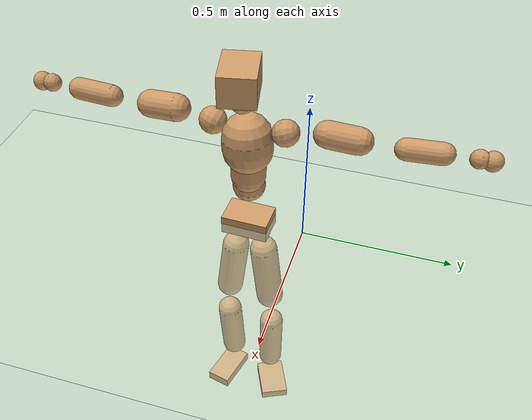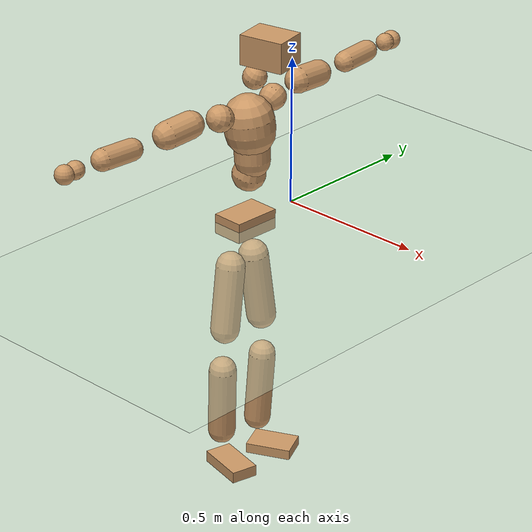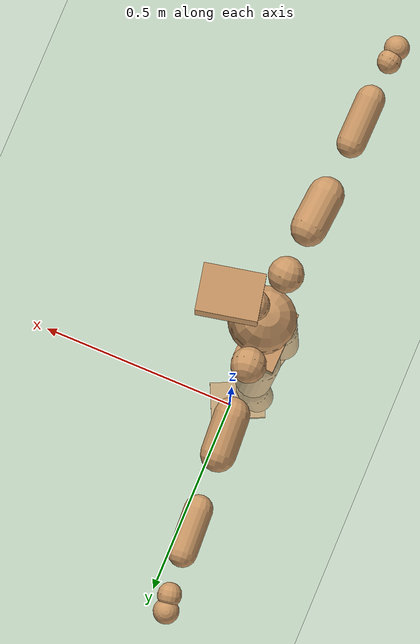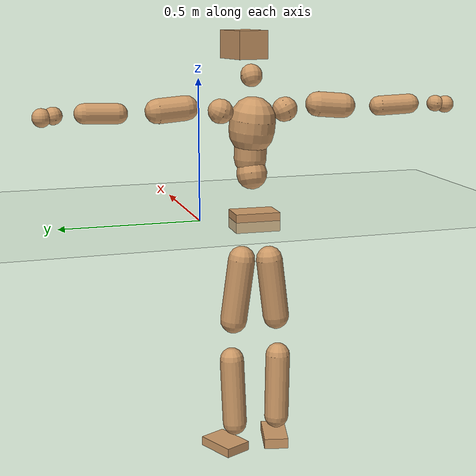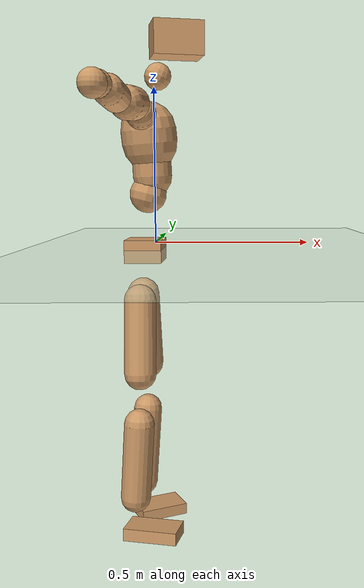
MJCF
<mujoco model="humanoid">
  <compiler coordinate="local" angle="radian"/>
  <default>
    <joint damping="0.0" armature="0.01" stiffness="0.0" limited="true"/>
    <geom conaffinity="1" condim="3" contype="7" margin="0.001" rgba="0.8 0.6 .4 1"/>
  </default>
  <asset>
    <texture type="skybox" builtin="gradient" rgb1=".4 .5 .6" rgb2="0 0 0" width="100" height="100"/>
    <texture builtin="flat" height="1278" mark="cross" markrgb="1 1 1" name="texgeom" random="0.01" rgb1="0.8 0.6 0.4" rgb2="0.8 0.6 0.4" type="cube" width="127"/>
    <texture builtin="checker" height="100" name="texplane" rgb1="0 0 0" rgb2="0.8 0.8 0.8" type="2d" width="100"/>
    <material name="MatPlane" reflectance="0.5" shininess="1" specular="1" texrepeat="60 60" texture="texplane"/>
    <material name="geom" texture="texgeom" texuniform="true"/>
  </asset>
  <worldbody>
    <light cutoff="100" diffuse="1 1 1" dir="-0 0 -1.3" directional="true" exponent="1" pos="0 0 1.3" specular=".1 .1 .1"/>
    <geom conaffinity="1" condim="3" name="floor" pos="0 0 0" rgba="0.8 0.9 0.8 1" size="100 100 .2" type="plane" material="MatPlane"/>
    <body name="Pelvis" pos="-0.0044 -0.1968 0.0015">
      <freejoint name="Pelvis"/>
      <geom type="box" contype="1" conaffinity="1" density="5359.374483" pos="-0.0113 0.0003 -0.0082" size="0.0543 0.0807 0.0337" quat="0.9999 0.0000 0.0000 -0.0147" name="Pelvis"/>
      <body name="L_Hip" pos="-0.0278 0.0416 -0.07">
        <joint name="L_Hip_x" type="hinge" pos="0 0 0" axis="1 0 0" stiffness="1600" damping="160" armature="0.02" range="-180.0000 180.0000"/>
        <joint name="L_Hip_y" type="hinge" pos="0 0 0" axis="0 1 0" stiffness="1600" damping="160" armature="0.02" range="-180.0000 180.0000"/>
        <joint name="L_Hip_z" type="hinge" pos="0 0 0" axis="0 0 1" stiffness="1600" damping="160" armature="0.02" range="-180.0000 180.0000"/>
        <geom type="capsule" contype="1" conaffinity="1" density="2040.816327" size="0.049" fromto="0.0027 0.0100 -0.0783 0.0104 0.0391 -0.3070" name="L_Hip"/>
        <body name="L_Knee" pos="0.013 0.0491 -0.3853">
          <joint name="L_Knee_x" type="hinge" pos="0 0 0" axis="1 0 0" stiffness="1600" damping="160" armature="0.02" range="-180.0000 180.0000"/>
          <joint name="L_Knee_y" type="hinge" pos="0 0 0" axis="0 1 0" stiffness="1600" damping="160" armature="0.02" range="-180.0000 180.0000"/>
          <joint name="L_Knee_z" type="hinge" pos="0 0 0" axis="0 0 1" stiffness="1600" damping="160" armature="0.02" range="-180.0000 180.0000"/>
          <geom type="capsule" contype="1" conaffinity="1" density="1234.567901" size="0.0443" fromto="-0.0051 -0.0017 -0.0741 -0.0219 -0.0072 -0.3193" name="L_Knee"/>
          <body name="L_Ankle" pos="-0.027 -0.0089 -0.3933">
            <joint name="L_Ankle_x" type="hinge" pos="0 0 0" axis="1 0 0" stiffness="1600" damping="160" armature="0.02" range="-180.0000 180.0000"/>
            <joint name="L_Ankle_y" type="hinge" pos="0 0 0" axis="0 1 0" stiffness="1600" damping="160" armature="0.02" range="-180.0000 180.0000"/>
            <joint name="L_Ankle_z" type="hinge" pos="0 0 0" axis="0 0 1" stiffness="1600" damping="160" armature="0.02" range="-180.0000 180.0000"/>
            <geom type="box" contype="1" conaffinity="1" density="1000.000035" pos="0.0540 0.0252 -0.0284" size="0.0759 0.0516 0.0171" quat="0.9762 0.0000 0.0000 0.2168" name="L_Ankle"/>
            <body name="L_Toe" pos="0.108 0.0505 -0.0567">
              <joint name="L_Toe_x" type="hinge" pos="0 0 0" axis="1 0 0" stiffness="1000" damping="100" armature="0.02" range="-180.0000 180.0000"/>
              <joint name="L_Toe_y" type="hinge" pos="0 0 0" axis="0 1 0" stiffness="1000" damping="100" armature="0.02" range="-180.0000 180.0000"/>
              <joint name="L_Toe_z" type="hinge" pos="0 0 0" axis="0 0 1" stiffness="1000" damping="100" armature="0.02" range="-180.0000 180.0000"/>
              <geom type="box" contype="1" conaffinity="1" density="6632948.050367" pos="0.0000 0.0000 0.0313" size="0.001 0.0025 0.001" quat="0.9753 0.0000 0.0000 0.2207" name="L_Toe"/>
            </body>
          </body>
        </body>
      </body>
      <body name="R_Hip" pos="-0.0256 -0.0437 -0.0773">
        <joint name="R_Hip_x" type="hinge" pos="0 0 0" axis="1 0 0" stiffness="1600" damping="160" armature="0.02" range="-180.0000 180.0000"/>
        <joint name="R_Hip_y" type="hinge" pos="0 0 0" axis="0 1 0" stiffness="1600" damping="160" armature="0.02" range="-180.0000 180.0000"/>
        <joint name="R_Hip_z" type="hinge" pos="0 0 0" axis="0 0 1" stiffness="1600" damping="160" armature="0.02" range="-180.0000 180.0000"/>
        <geom type="capsule" contype="1" conaffinity="1" density="2040.816327" size="0.0479" fromto="0.0000 -0.0095 -0.0773 0.0000 -0.0363 -0.2964" name="R_Hip"/>
        <body name="R_Knee" pos="0 -0.0458 -0.3737">
          <joint name="R_Knee_x" type="hinge" pos="0 0 0" axis="1 0 0" stiffness="1600" damping="160" armature="0.02" range="-180.0000 180.0000"/>
          <joint name="R_Knee_y" type="hinge" pos="0 0 0" axis="0 1 0" stiffness="1600" damping="160" armature="0.02" range="-180.0000 180.0000"/>
          <joint name="R_Knee_z" type="hinge" pos="0 0 0" axis="0 0 1" stiffness="1600" damping="160" armature="0.02" range="-180.0000 180.0000"/>
          <geom type="capsule" contype="1" conaffinity="1" density="1234.567901" size="0.0454" fromto="-0.0048 0.0029 -0.0752 -0.0199 0.0121 -0.3104" name="R_Knee"/>
          <body name="R_Ankle" pos="-0.0247 0.015 -0.3856">
            <joint name="R_Ankle_x" type="hinge" pos="0 0 0" axis="1 0 0" stiffness="1600" damping="160" armature="0.02" range="-180.0000 180.0000"/>
            <joint name="R_Ankle_y" type="hinge" pos="0 0 0" axis="0 1 0" stiffness="1600" damping="160" armature="0.02" range="-180.0000 180.0000"/>
            <joint name="R_Ankle_z" type="hinge" pos="0 0 0" axis="0 0 1" stiffness="1600" damping="160" armature="0.02" range="-180.0000 180.0000"/>
            <geom type="box" contype="1" conaffinity="1" density="1000.00005" pos="0.0584 -0.0136 -0.0301" size="0.0827 0.0449 0.0192" quat="0.9935 0.0000 0.0000 -0.1139" name="R_Ankle"/>
            <body name="R_Toe" pos="0.1167 -0.0271 -0.0602">
              <joint name="R_Toe_x" type="hinge" pos="0 0 0" axis="1 0 0" stiffness="1000" damping="100" armature="0.02" range="-180.0000 180.0000"/>
              <joint name="R_Toe_y" type="hinge" pos="0 0 0" axis="0 1 0" stiffness="1000" damping="100" armature="0.02" range="-180.0000 180.0000"/>
              <joint name="R_Toe_z" type="hinge" pos="0 0 0" axis="0 0 1" stiffness="1000" damping="100" armature="0.02" range="-180.0000 180.0000"/>
              <geom type="box" contype="1" conaffinity="1" density="8568916.758349" pos="0.0000 0.0000 0.0328" size="0.0009 0.0022 0.0011" quat="0.9946 0.0000 0.0000 -0.1040" name="R_Toe"/>
            </body>
          </body>
        </body>
      </body>
      <body name="Torso" pos="-0.0147 0.0041 0.0983">
        <joint name="Torso_x" type="hinge" pos="0 0 0" axis="1 0 0" stiffness="2000" damping="200" armature="0.02" range="-180.0000 180.0000"/>
        <joint name="Torso_y" type="hinge" pos="0 0 0" axis="0 1 0" stiffness="2000" damping="200" armature="0.02" range="-180.0000 180.0000"/>
        <joint name="Torso_z" type="hinge" pos="0 0 0" axis="0 0 1" stiffness="2000" damping="200" armature="0.02" range="-180.0000 180.0000"/>
        <geom type="capsule" contype="1" conaffinity="1" density="2040.816327" size="0.0551" fromto="0.0130 0.0019 0.0602 0.0135 0.0020 0.0621" name="Torso"/>
        <body name="Spine" pos="0.0265 0.0039 0.1223">
          <joint name="Spine_x" type="hinge" pos="0 0 0" axis="1 0 0" stiffness="2000" damping="200" armature="0.02" range="-180.0000 180.0000"/>
          <joint name="Spine_y" type="hinge" pos="0 0 0" axis="0 1 0" stiffness="2000" damping="200" armature="0.02" range="-180.0000 180.0000"/>
          <joint name="Spine_z" type="hinge" pos="0 0 0" axis="0 0 1" stiffness="2000" damping="200" armature="0.02" range="-180.0000 180.0000"/>
          <geom type="capsule" contype="1" conaffinity="1" density="2040.816327" size="0.058" fromto="-0.0027 -0.0005 0.0580 0.0004 0.0001 -0.0095" name="Spine"/>
          <body name="Chest" pos="-0.0022 -0.0004 0.0485">
            <joint name="Chest_x" type="hinge" pos="0 0 0" axis="1 0 0" stiffness="2000" damping="200" armature="0.02" range="-180.0000 180.0000"/>
            <joint name="Chest_y" type="hinge" pos="0 0 0" axis="0 1 0" stiffness="2000" damping="200" armature="0.02" range="-180.0000 180.0000"/>
            <joint name="Chest_z" type="hinge" pos="0 0 0" axis="0 0 1" stiffness="2000" damping="200" armature="0.02" range="-180.0000 180.0000"/>
            <geom type="capsule" contype="1" conaffinity="1" density="2040.816327" size="0.0822" fromto="-0.0075 -0.0061 0.0817 -0.0038 -0.0031 0.0418" name="Chest"/>
            <body name="Neck" pos="-0.0044 -0.0153 0.1819">
              <joint name="Neck_x" type="hinge" pos="0 0 0" axis="1 0 0" stiffness="1000" damping="100" armature="0.02" range="-180.0000 180.0000"/>
              <joint name="Neck_y" type="hinge" pos="0 0 0" axis="0 1 0" stiffness="1000" damping="100" armature="0.02" range="-180.0000 180.0000"/>
              <joint name="Neck_z" type="hinge" pos="0 0 0" axis="0 0 1" stiffness="1000" damping="100" armature="0.02" range="-180.0000 180.0000"/>
              <geom type="capsule" contype="1" conaffinity="1" density="1000" size="0.0392" fromto="0.0265 0.0047 0.0512 0.0274 0.0048 0.0530" name="Neck"/>
              <body name="Head" pos="0.0539 0.0095 0.1043">
                <joint name="Head_x" type="hinge" pos="0 0 0" axis="1 0 0" stiffness="1000" damping="100" armature="0.02" range="-180.0000 180.0000"/>
                <joint name="Head_y" type="hinge" pos="0 0 0" axis="0 1 0" stiffness="1000" damping="100" armature="0.02" range="-180.0000 180.0000"/>
                <joint name="Head_z" type="hinge" pos="0 0 0" axis="0 0 1" stiffness="1000" damping="100" armature="0.02" range="-180.0000 180.0000"/>
                <geom type="box" contype="1" conaffinity="1" density="2250.000166" pos="0.0280 0.0058 0.0531" size="0.0739 0.0567 0.0495" quat="0.9949 0.0000 0.0000 0.1013" name="Head"/>
              </body>
            </body>
            <body name="L_Thorax" pos="-0.0127 0.0607 0.0943">
              <joint name="L_Thorax_x" type="hinge" pos="0 0 0" axis="1 0 0" stiffness="1000" damping="100" armature="0.02" range="-180.0000 180.0000"/>
              <joint name="L_Thorax_y" type="hinge" pos="0 0 0" axis="0 1 0" stiffness="1000" damping="100" armature="0.02" range="-180.0000 180.0000"/>
              <joint name="L_Thorax_z" type="hinge" pos="0 0 0" axis="0 0 1" stiffness="1000" damping="100" armature="0.02" range="-180.0000 180.0000"/>
              <geom type="capsule" contype="1" conaffinity="1" density="1000" size="0.0436" fromto="-0.0058 0.0527 0.0214 -0.0060 0.0546 0.0221" name="L_Thorax"/>
              <body name="L_Shoulder" pos="-0.0118 0.1073 0.0435">
                <joint name="L_Shoulder_x" type="hinge" pos="0 0 0" axis="1 0 0" stiffness="1000" damping="100" armature="0.02" range="-720.0000 720.0000"/>
                <joint name="L_Shoulder_y" type="hinge" pos="0 0 0" axis="0 1 0" stiffness="1000" damping="100" armature="0.02" range="-720.0000 720.0000"/>
                <joint name="L_Shoulder_z" type="hinge" pos="0 0 0" axis="0 0 1" stiffness="1000" damping="100" armature="0.02" range="-720.0000 720.0000"/>
                <geom type="capsule" contype="1" conaffinity="1" density="1000" size="0.0433" fromto="-0.0041 0.0730 -0.0054 -0.0097 0.1725 -0.0128" name="L_Shoulder"/>
                <body name="L_Elbow" pos="-0.0138 0.2455 -0.0182">
                  <joint name="L_Elbow_x" type="hinge" pos="0 0 0" axis="1 0 0" stiffness="1000" damping="100" armature="0.02" range="-720.0000 720.0000"/>
                  <joint name="L_Elbow_y" type="hinge" pos="0 0 0" axis="0 1 0" stiffness="1000" damping="100" armature="0.02" range="-720.0000 720.0000"/>
                  <joint name="L_Elbow_z" type="hinge" pos="0 0 0" axis="0 0 1" stiffness="1000" damping="100" armature="0.02" range="-720.0000 720.0000"/>
                  <geom type="capsule" contype="1" conaffinity="1" density="1000" size="0.0349" fromto="-0.0030 0.0648 0.0023 -0.0081 0.1760 0.0063" name="L_Elbow"/>
                  <body name="L_Wrist" pos="-0.011 0.2408 0.0086">
                    <joint name="L_Wrist_x" type="hinge" pos="0 0 0" axis="1 0 0" stiffness="600" damping="60" armature="0.02" range="-180.0000 180.0000"/>
                    <joint name="L_Wrist_y" type="hinge" pos="0 0 0" axis="0 1 0" stiffness="600" damping="60" armature="0.02" range="-180.0000 180.0000"/>
                    <joint name="L_Wrist_z" type="hinge" pos="0 0 0" axis="0 0 1" stiffness="600" damping="60" armature="0.02" range="-180.0000 180.0000"/>
                    <geom type="capsule" contype="1" conaffinity="1" density="1000" size="0.0296" fromto="-0.0068 0.0374 -0.0046 -0.0072 0.0394 -0.0049" name="L_Wrist"/>
                    <body name="L_Hand" pos="-0.014 0.0768 -0.0095">
                      <joint name="L_Hand_x" type="hinge" pos="0 0 0" axis="1 0 0" stiffness="600" damping="60" armature="0.02" range="-180.0000 180.0000"/>
                      <joint name="L_Hand_y" type="hinge" pos="0 0 0" axis="0 1 0" stiffness="600" damping="60" armature="0.02" range="-180.0000 180.0000"/>
                      <joint name="L_Hand_z" type="hinge" pos="0 0 0" axis="0 0 1" stiffness="600" damping="60" armature="0.02" range="-180.0000 180.0000"/>
                      <geom type="sphere" contype="1" conaffinity="1" density="1000" size="0.0314" pos="0.0000 0.0000 0.0000" name="L_Hand"/>
                    </body>
                  </body>
                </body>
              </body>
            </body>
            <body name="R_Thorax" pos="-0.0168 -0.0732 0.0942">
              <joint name="R_Thorax_x" type="hinge" pos="0 0 0" axis="1 0 0" stiffness="1000" damping="100" armature="0.02" range="-180.0000 180.0000"/>
              <joint name="R_Thorax_y" type="hinge" pos="0 0 0" axis="0 1 0" stiffness="1000" damping="100" armature="0.02" range="-180.0000 180.0000"/>
              <joint name="R_Thorax_z" type="hinge" pos="0 0 0" axis="0 0 1" stiffness="1000" damping="100" armature="0.02" range="-180.0000 180.0000"/>
              <geom type="capsule" contype="1" conaffinity="1" density="1000" size="0.0439" fromto="-0.0015 -0.0475 0.0216 -0.0015 -0.0494 0.0224" name="R_Thorax"/>
              <body name="R_Shoulder" pos="-0.003 -0.0969 0.044">
                <joint name="R_Shoulder_x" type="hinge" pos="0 0 0" axis="1 0 0" stiffness="1000" damping="100" armature="0.02" range="-720.0000 720.0000"/>
                <joint name="R_Shoulder_y" type="hinge" pos="0 0 0" axis="0 1 0" stiffness="1000" damping="100" armature="0.02" range="-720.0000 720.0000"/>
                <joint name="R_Shoulder_z" type="hinge" pos="0 0 0" axis="0 0 1" stiffness="1000" damping="100" armature="0.02" range="-720.0000 720.0000"/>
                <geom type="capsule" contype="1" conaffinity="1" density="1000" size="0.0447" fromto="-0.0061 -0.0742 -0.0063 -0.0136 -0.1662 -0.0140" name="R_Shoulder"/>
                <body name="R_Elbow" pos="-0.0197 -0.2404 -0.0203">
                  <joint name="R_Elbow_x" type="hinge" pos="0 0 0" axis="1 0 0" stiffness="1000" damping="100" armature="0.02" range="-720.0000 720.0000"/>
                  <joint name="R_Elbow_y" type="hinge" pos="0 0 0" axis="0 1 0" stiffness="1000" damping="100" armature="0.02" range="-720.0000 720.0000"/>
                  <joint name="R_Elbow_z" type="hinge" pos="0 0 0" axis="0 0 1" stiffness="1000" damping="100" armature="0.02" range="-720.0000 720.0000"/>
                  <geom type="capsule" contype="1" conaffinity="1" density="1000" size="0.0356" fromto="-0.0015 -0.0656 0.0024 -0.0041 -0.1821 0.0067" name="R_Elbow"/>
                  <body name="R_Wrist" pos="-0.0056 -0.2476 0.0091">
                    <joint name="R_Wrist_x" type="hinge" pos="0 0 0" axis="1 0 0" stiffness="600" damping="60" armature="0.02" range="-180.0000 180.0000"/>
                    <joint name="R_Wrist_y" type="hinge" pos="0 0 0" axis="0 1 0" stiffness="600" damping="60" armature="0.02" range="-180.0000 180.0000"/>
                    <joint name="R_Wrist_z" type="hinge" pos="0 0 0" axis="0 0 1" stiffness="600" damping="60" armature="0.02" range="-180.0000 180.0000"/>
                    <geom type="capsule" contype="1" conaffinity="1" density="1000" size="0.0295" fromto="-0.0045 -0.0373 -0.0035 -0.0048 -0.0392 -0.0037" name="R_Wrist"/>
                    <body name="R_Hand" pos="-0.0093 -0.0765 -0.0073">
                      <joint name="R_Hand_x" type="hinge" pos="0 0 0" axis="1 0 0" stiffness="600" damping="60" armature="0.02" range="-180.0000 180.0000"/>
                      <joint name="R_Hand_y" type="hinge" pos="0 0 0" axis="0 1 0" stiffness="600" damping="60" armature="0.02" range="-180.0000 180.0000"/>
                      <joint name="R_Hand_z" type="hinge" pos="0 0 0" axis="0 0 1" stiffness="600" damping="60" armature="0.02" range="-180.0000 180.0000"/>
                      <geom type="sphere" contype="1" conaffinity="1" density="1000" size="0.0311" pos="0.0000 0.0000 0.0000" name="R_Hand"/>
                    </body>
                  </body>
                </body>
              </body>
            </body>
          </body>
        </body>
      </body>
    </body>
  </worldbody>
  <actuator>
    <motor name="L_Hip_x" joint="L_Hip_x" gear="500"/>
    <motor name="L_Hip_y" joint="L_Hip_y" gear="500"/>
    <motor name="L_Hip_z" joint="L_Hip_z" gear="500"/>
    <motor name="L_Knee_x" joint="L_Knee_x" gear="500"/>
    <motor name="L_Knee_y" joint="L_Knee_y" gear="500"/>
    <motor name="L_Knee_z" joint="L_Knee_z" gear="500"/>
    <motor name="L_Ankle_x" joint="L_Ankle_x" gear="500"/>
    <motor name="L_Ankle_y" joint="L_Ankle_y" gear="500"/>
    <motor name="L_Ankle_z" joint="L_Ankle_z" gear="500"/>
    <motor name="L_Toe_x" joint="L_Toe_x" gear="500"/>
    <motor name="L_Toe_y" joint="L_Toe_y" gear="500"/>
    <motor name="L_Toe_z" joint="L_Toe_z" gear="500"/>
    <motor name="R_Hip_x" joint="R_Hip_x" gear="500"/>
    <motor name="R_Hip_y" joint="R_Hip_y" gear="500"/>
    <motor name="R_Hip_z" joint="R_Hip_z" gear="500"/>
    <motor name="R_Knee_x" joint="R_Knee_x" gear="500"/>
    <motor name="R_Knee_y" joint="R_Knee_y" gear="500"/>
    <motor name="R_Knee_z" joint="R_Knee_z" gear="500"/>
    <motor name="R_Ankle_x" joint="R_Ankle_x" gear="500"/>
    <motor name="R_Ankle_y" joint="R_Ankle_y" gear="500"/>
    <motor name="R_Ankle_z" joint="R_Ankle_z" gear="500"/>
    <motor name="R_Toe_x" joint="R_Toe_x" gear="500"/>
    <motor name="R_Toe_y" joint="R_Toe_y" gear="500"/>
    <motor name="R_Toe_z" joint="R_Toe_z" gear="500"/>
    <motor name="Torso_x" joint="Torso_x" gear="500"/>
    <motor name="Torso_y" joint="Torso_y" gear="500"/>
    <motor name="Torso_z" joint="Torso_z" gear="500"/>
    <motor name="Spine_x" joint="Spine_x" gear="500"/>
    <motor name="Spine_y" joint="Spine_y" gear="500"/>
    <motor name="Spine_z" joint="Spine_z" gear="500"/>
    <motor name="Chest_x" joint="Chest_x" gear="500"/>
    <motor name="Chest_y" joint="Chest_y" gear="500"/>
    <motor name="Chest_z" joint="Chest_z" gear="500"/>
    <motor name="Neck_x" joint="Neck_x" gear="500"/>
    <motor name="Neck_y" joint="Neck_y" gear="500"/>
    <motor name="Neck_z" joint="Neck_z" gear="500"/>
    <motor name="Head_x" joint="Head_x" gear="500"/>
    <motor name="Head_y" joint="Head_y" gear="500"/>
    <motor name="Head_z" joint="Head_z" gear="500"/>
    <motor name="L_Thorax_x" joint="L_Thorax_x" gear="500"/>
    <motor name="L_Thorax_y" joint="L_Thorax_y" gear="500"/>
    <motor name="L_Thorax_z" joint="L_Thorax_z" gear="500"/>
    <motor name="L_Shoulder_x" joint="L_Shoulder_x" gear="500"/>
    <motor name="L_Shoulder_y" joint="L_Shoulder_y" gear="500"/>
    <motor name="L_Shoulder_z" joint="L_Shoulder_z" gear="500"/>
    <motor name="L_Elbow_x" joint="L_Elbow_x" gear="500"/>
    <motor name="L_Elbow_y" joint="L_Elbow_y" gear="500"/>
    <motor name="L_Elbow_z" joint="L_Elbow_z" gear="500"/>
    <motor name="L_Wrist_x" joint="L_Wrist_x" gear="500"/>
    <motor name="L_Wrist_y" joint="L_Wrist_y" gear="500"/>
    <motor name="L_Wrist_z" joint="L_Wrist_z" gear="500"/>
    <motor name="L_Hand_x" joint="L_Hand_x" gear="500"/>
    <motor name="L_Hand_y" joint="L_Hand_y" gear="500"/>
    <motor name="L_Hand_z" joint="L_Hand_z" gear="500"/>
    <motor name="R_Thorax_x" joint="R_Thorax_x" gear="500"/>
    <motor name="R_Thorax_y" joint="R_Thorax_y" gear="500"/>
    <motor name="R_Thorax_z" joint="R_Thorax_z" gear="500"/>
    <motor name="R_Shoulder_x" joint="R_Shoulder_x" gear="500"/>
    <motor name="R_Shoulder_y" joint="R_Shoulder_y" gear="500"/>
    <motor name="R_Shoulder_z" joint="R_Shoulder_z" gear="500"/>
    <motor name="R_Elbow_x" joint="R_Elbow_x" gear="500"/>
    <motor name="R_Elbow_y" joint="R_Elbow_y" gear="500"/>
    <motor name="R_Elbow_z" joint="R_Elbow_z" gear="500"/>
    <motor name="R_Wrist_x" joint="R_Wrist_x" gear="500"/>
    <motor name="R_Wrist_y" joint="R_Wrist_y" gear="500"/>
    <motor name="R_Wrist_z" joint="R_Wrist_z" gear="500"/>
    <motor name="R_Hand_x" joint="R_Hand_x" gear="500"/>
    <motor name="R_Hand_y" joint="R_Hand_y" gear="500"/>
    <motor name="R_Hand_z" joint="R_Hand_z" gear="500"/>
  </actuator>
  <contact>
    <exclude body1="Torso" body2="Chest"/>
    <exclude body1="Head" body2="Chest"/>
    <exclude body1="R_Knee" body2="R_Toe"/>
    <exclude body1="R_Knee" body2="L_Ankle"/>
    <exclude body1="R_Knee" body2="L_Toe"/>
    <exclude body1="L_Knee" body2="L_Toe"/>
    <exclude body1="L_Knee" body2="R_Ankle"/>
    <exclude body1="L_Knee" body2="R_Toe"/>
    <exclude body1="L_Shoulder" body2="Chest"/>
    <exclude body1="R_Shoulder" body2="Chest"/>
  </contact>
  <sensor/>
  <size njmax="700" nconmax="700"/>
</mujoco>
